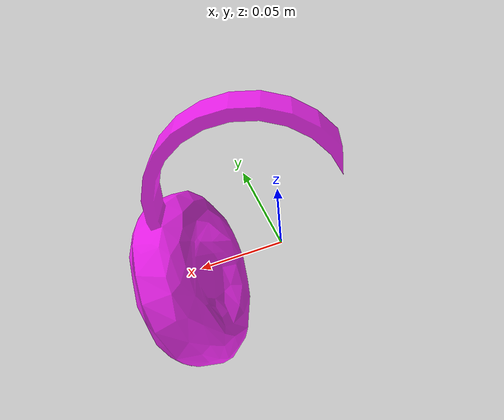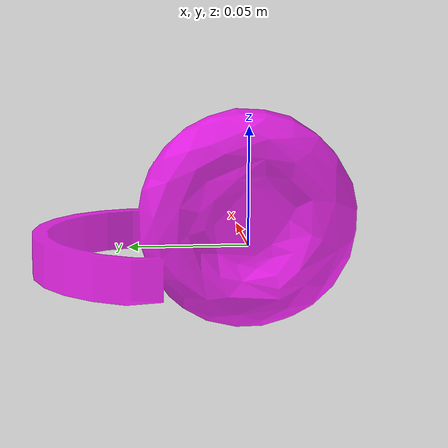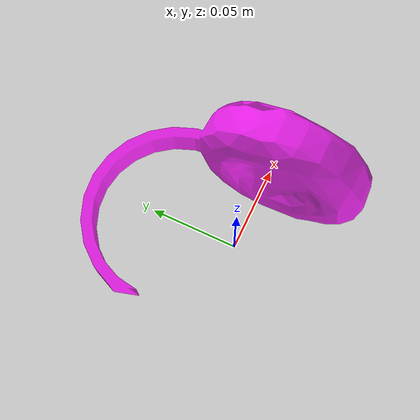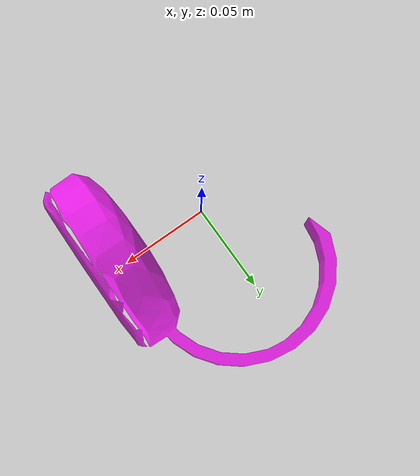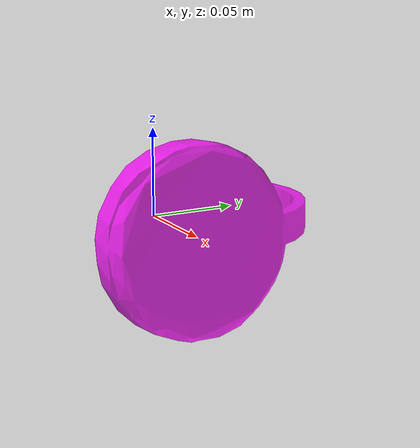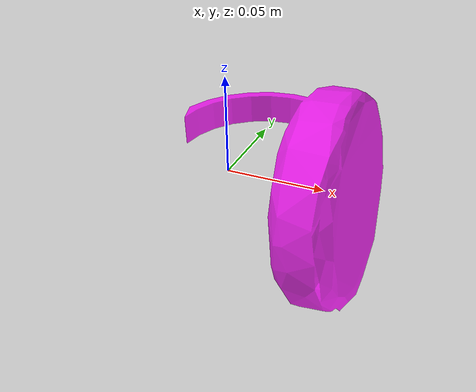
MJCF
<mujoco model="bottom_watertight_tiny">
  <default>
    <default group="2" type="mesh" contype="0" conaffinity="0">
      <geom group="2" type="mesh" contype="0" conaffinity="0"/>
    </default>
    <default group="3" type="mesh">
      <geom group="3" type="mesh"/>
    </default>
  </default>
  <asset>
    <mesh file="bottom_watertight_tiny.obj"/>
    <mesh file="bottom_watertight_tiny_collision_0.obj"/>
    <mesh file="bottom_watertight_tiny_collision_1.obj"/>
    <mesh file="bottom_watertight_tiny_collision_2.obj"/>
    <mesh file="bottom_watertight_tiny_collision_3.obj"/>
    <mesh file="bottom_watertight_tiny_collision_4.obj"/>
    <mesh file="bottom_watertight_tiny_collision_5.obj"/>
    <mesh file="bottom_watertight_tiny_collision_6.obj"/>
    <mesh file="bottom_watertight_tiny_collision_7.obj"/>
    <mesh file="bottom_watertight_tiny_collision_8.obj"/>
    <mesh file="bottom_watertight_tiny_collision_9.obj"/>
    <mesh file="bottom_watertight_tiny_collision_10.obj"/>
    <mesh file="bottom_watertight_tiny_collision_11.obj"/>
    <mesh file="bottom_watertight_tiny_collision_12.obj"/>
    <mesh file="bottom_watertight_tiny_collision_13.obj"/>
    <mesh file="bottom_watertight_tiny_collision_14.obj"/>
    <mesh file="bottom_watertight_tiny_collision_15.obj"/>
    <mesh file="bottom_watertight_tiny_collision_16.obj"/>
    <mesh file="bottom_watertight_tiny_collision_17.obj"/>
    <mesh file="bottom_watertight_tiny_collision_18.obj"/>
    <mesh file="bottom_watertight_tiny_collision_19.obj"/>
    <mesh file="bottom_watertight_tiny_collision_20.obj"/>
    <mesh file="bottom_watertight_tiny_collision_21.obj"/>
    <mesh file="bottom_watertight_tiny_collision_22.obj"/>
    <mesh file="bottom_watertight_tiny_collision_23.obj"/>
    <mesh file="bottom_watertight_tiny_collision_24.obj"/>
    <mesh file="bottom_watertight_tiny_collision_25.obj"/>
    <mesh file="bottom_watertight_tiny_collision_26.obj"/>
    <mesh file="bottom_watertight_tiny_collision_27.obj"/>
    <mesh file="bottom_watertight_tiny_collision_28.obj"/>
    <mesh file="bottom_watertight_tiny_collision_29.obj"/>
    <mesh file="bottom_watertight_tiny_collision_30.obj"/>
    <mesh file="bottom_watertight_tiny_collision_31.obj"/>
    <mesh file="bottom_watertight_tiny_collision_32.obj"/>
    <mesh file="bottom_watertight_tiny_collision_33.obj"/>
    <mesh file="bottom_watertight_tiny_collision_34.obj"/>
    <mesh file="bottom_watertight_tiny_collision_35.obj"/>
    <mesh file="bottom_watertight_tiny_collision_36.obj"/>
    <mesh file="bottom_watertight_tiny_collision_37.obj"/>
    <mesh file="bottom_watertight_tiny_collision_38.obj"/>
    <mesh file="bottom_watertight_tiny_collision_39.obj"/>
    <mesh file="bottom_watertight_tiny_collision_40.obj"/>
    <mesh file="bottom_watertight_tiny_collision_41.obj"/>
    <mesh file="bottom_watertight_tiny_collision_42.obj"/>
    <mesh file="bottom_watertight_tiny_collision_43.obj"/>
    <mesh file="bottom_watertight_tiny_collision_44.obj"/>
    <mesh file="bottom_watertight_tiny_collision_45.obj"/>
    <mesh file="bottom_watertight_tiny_collision_46.obj"/>
    <mesh file="bottom_watertight_tiny_collision_47.obj"/>
    <mesh file="bottom_watertight_tiny_collision_48.obj"/>
    <mesh file="bottom_watertight_tiny_collision_49.obj"/>
    <mesh file="bottom_watertight_tiny_collision_50.obj"/>
    <mesh file="bottom_watertight_tiny_collision_51.obj"/>
    <mesh file="bottom_watertight_tiny_collision_52.obj"/>
    <mesh file="bottom_watertight_tiny_collision_53.obj"/>
    <mesh file="bottom_watertight_tiny_collision_54.obj"/>
    <mesh file="bottom_watertight_tiny_collision_55.obj"/>
    <mesh file="bottom_watertight_tiny_collision_56.obj"/>
    <mesh file="bottom_watertight_tiny_collision_57.obj"/>
    <mesh file="bottom_watertight_tiny_collision_58.obj"/>
    <mesh file="bottom_watertight_tiny_collision_59.obj"/>
    <mesh file="bottom_watertight_tiny_collision_60.obj"/>
    <mesh file="bottom_watertight_tiny_collision_61.obj"/>
    <mesh file="bottom_watertight_tiny_collision_62.obj"/>
    <mesh file="bottom_watertight_tiny_collision_63.obj"/>
    <mesh file="bottom_watertight_tiny_collision_64.obj"/>
    <mesh file="bottom_watertight_tiny_collision_65.obj"/>
    <mesh file="bottom_watertight_tiny_collision_66.obj"/>
    <mesh file="bottom_watertight_tiny_collision_67.obj"/>
    <mesh file="bottom_watertight_tiny_collision_68.obj"/>
    <mesh file="bottom_watertight_tiny_collision_69.obj"/>
    <mesh file="bottom_watertight_tiny_collision_70.obj"/>
    <mesh file="bottom_watertight_tiny_collision_71.obj"/>
    <mesh file="bottom_watertight_tiny_collision_72.obj"/>
    <mesh file="bottom_watertight_tiny_collision_73.obj"/>
    <mesh file="bottom_watertight_tiny_collision_74.obj"/>
    <mesh file="bottom_watertight_tiny_collision_75.obj"/>
    <mesh file="bottom_watertight_tiny_collision_76.obj"/>
  </asset>
  <worldbody>
    <body name="bottom_watertight_tiny">
      <freejoint/>
      <geom mesh="bottom_watertight_tiny" group="2" type="mesh" rgba="1 0 1 0.8" contype="0" conaffinity="0"/>
      <geom mesh="bottom_watertight_tiny_collision_0" rgba="0.5773887846904436 0.6760085532899445 0.9060057922680003 1" group="3" type="mesh"/>
      <geom mesh="bottom_watertight_tiny_collision_1" rgba="0.1813608720664427 0.002170755468185459 0.5770263400091715 1" group="3" type="mesh"/>
      <geom mesh="bottom_watertight_tiny_collision_2" rgba="0.04705966202333933 0.6213939317601054 0.04476967790698916 1" group="3" type="mesh"/>
      <geom mesh="bottom_watertight_tiny_collision_3" rgba="0.7878272902396081 0.31917593614639717 0.627966522639284 1" group="3" type="mesh"/>
      <geom mesh="bottom_watertight_tiny_collision_4" rgba="0.763089264875 0.9826720801770908 0.8962446491003766 1" group="3" type="mesh"/>
      <geom mesh="bottom_watertight_tiny_collision_5" rgba="0.43460533288599623 0.8109144511733324 0.6803107021766451 1" group="3" type="mesh"/>
      <geom mesh="bottom_watertight_tiny_collision_6" rgba="0.19682038455423834 0.2989477600701558 0.4629149816196634 1" group="3" type="mesh"/>
      <geom mesh="bottom_watertight_tiny_collision_7" rgba="0.638830600958989 0.22414911975993213 0.11856174361866378 1" group="3" type="mesh"/>
      <geom mesh="bottom_watertight_tiny_collision_8" rgba="0.712667123565942 0.8840523828115711 0.932718620467708 1" group="3" type="mesh"/>
      <geom mesh="bottom_watertight_tiny_collision_9" rgba="0.5997271547550015 0.0659220817349856 0.8414133467217753 1" group="3" type="mesh"/>
      <geom mesh="bottom_watertight_tiny_collision_10" rgba="0.5669383477277945 0.358913620275512 0.8137929236792601 1" group="3" type="mesh"/>
      <geom mesh="bottom_watertight_tiny_collision_11" rgba="0.17558399080942466 0.4100764862290227 0.9390257791363179 1" group="3" type="mesh"/>
      <geom mesh="bottom_watertight_tiny_collision_12" rgba="0.9063340159803251 0.2962818483514028 0.7906962743749179 1" group="3" type="mesh"/>
      <geom mesh="bottom_watertight_tiny_collision_13" rgba="0.06311286401846816 0.3726369385739967 0.5397562061423258 1" group="3" type="mesh"/>
      <geom mesh="bottom_watertight_tiny_collision_14" rgba="0.7043441768260474 0.44201683449566087 0.11921588232779978 1" group="3" type="mesh"/>
      <geom mesh="bottom_watertight_tiny_collision_15" rgba="0.34725985402841364 0.18811525287794262 0.92936368782076 1" group="3" type="mesh"/>
      <geom mesh="bottom_watertight_tiny_collision_16" rgba="0.5968062141434272 0.7317374351514194 0.4787753015091619 1" group="3" type="mesh"/>
      <geom mesh="bottom_watertight_tiny_collision_17" rgba="0.6076934206951228 0.9064977985003706 0.9006540471827233 1" group="3" type="mesh"/>
      <geom mesh="bottom_watertight_tiny_collision_18" rgba="0.6970166040540459 0.0917056869544165 0.9213950422107883 1" group="3" type="mesh"/>
      <geom mesh="bottom_watertight_tiny_collision_19" rgba="0.6021053066009132 0.2954990367417981 0.6782939364397546 1" group="3" type="mesh"/>
      <geom mesh="bottom_watertight_tiny_collision_20" rgba="0.07899212644168663 0.7409951147986726 0.2306029083879374 1" group="3" type="mesh"/>
      <geom mesh="bottom_watertight_tiny_collision_21" rgba="0.025322744416203524 0.9109725828673251 0.05966481468307139 1" group="3" type="mesh"/>
      <geom mesh="bottom_watertight_tiny_collision_22" rgba="0.2660016149795481 0.38978035506088904 0.24801395901097278 1" group="3" type="mesh"/>
      <geom mesh="bottom_watertight_tiny_collision_23" rgba="0.6784041493116252 0.9551225302054002 0.06077026436605126 1" group="3" type="mesh"/>
      <geom mesh="bottom_watertight_tiny_collision_24" rgba="0.3676722996349592 0.9447661771955067 0.7496784891026801 1" group="3" type="mesh"/>
      <geom mesh="bottom_watertight_tiny_collision_25" rgba="0.9806637380710127 0.616302932775893 0.09673327770457762 1" group="3" type="mesh"/>
      <geom mesh="bottom_watertight_tiny_collision_26" rgba="0.49316886405890414 0.09319067479553389 0.5155684626335567 1" group="3" type="mesh"/>
      <geom mesh="bottom_watertight_tiny_collision_27" rgba="0.8856964119502088 0.24917075843544068 0.15359419928644957 1" group="3" type="mesh"/>
      <geom mesh="bottom_watertight_tiny_collision_28" rgba="0.3520447911169783 0.3064567913128813 0.3145019586979406 1" group="3" type="mesh"/>
      <geom mesh="bottom_watertight_tiny_collision_29" rgba="0.6012514371877782 0.6442720522839565 0.29583706460842196 1" group="3" type="mesh"/>
      <geom mesh="bottom_watertight_tiny_collision_30" rgba="0.9122489444394877 0.8571595090696247 0.8275820239750852 1" group="3" type="mesh"/>
      <geom mesh="bottom_watertight_tiny_collision_31" rgba="0.03383170045775785 0.12413163347703804 0.7283709017184345 1" group="3" type="mesh"/>
      <geom mesh="bottom_watertight_tiny_collision_32" rgba="0.22246054869501508 0.7513463368712555 0.338704328361077 1" group="3" type="mesh"/>
      <geom mesh="bottom_watertight_tiny_collision_33" rgba="0.9705255410710727 0.458811573172238 0.32748748120266746 1" group="3" type="mesh"/>
      <geom mesh="bottom_watertight_tiny_collision_34" rgba="0.08465895156035808 0.3734974542704089 0.817872663520271 1" group="3" type="mesh"/>
      <geom mesh="bottom_watertight_tiny_collision_35" rgba="0.11248515015198346 0.11967399754720975 0.8005097582299101 1" group="3" type="mesh"/>
      <geom mesh="bottom_watertight_tiny_collision_36" rgba="0.438274450581009 0.9310060472013179 0.24831494521012176 1" group="3" type="mesh"/>
      <geom mesh="bottom_watertight_tiny_collision_37" rgba="0.7842714846073101 0.8592826655214935 0.5915788928073862 1" group="3" type="mesh"/>
      <geom mesh="bottom_watertight_tiny_collision_38" rgba="0.5444245898524319 0.47580553061456843 0.6356236756477642 1" group="3" type="mesh"/>
      <geom mesh="bottom_watertight_tiny_collision_39" rgba="0.5204053760052354 0.6651259986090771 0.4209714303355131 1" group="3" type="mesh"/>
      <geom mesh="bottom_watertight_tiny_collision_40" rgba="0.9315695019668968 0.6319003654743887 0.4015377577735947 1" group="3" type="mesh"/>
      <geom mesh="bottom_watertight_tiny_collision_41" rgba="0.2730164256212375 0.5377694157513196 0.5142590884539979 1" group="3" type="mesh"/>
      <geom mesh="bottom_watertight_tiny_collision_42" rgba="0.8947810703851733 0.10719497432743852 0.5417072197245413 1" group="3" type="mesh"/>
      <geom mesh="bottom_watertight_tiny_collision_43" rgba="0.6601186350359386 0.9199066153913272 0.935292017675703 1" group="3" type="mesh"/>
      <geom mesh="bottom_watertight_tiny_collision_44" rgba="0.699169201169045 0.5867065711407442 0.5133073131639957 1" group="3" type="mesh"/>
      <geom mesh="bottom_watertight_tiny_collision_45" rgba="0.26373133826618234 0.3347407431101994 0.7622695087146629 1" group="3" type="mesh"/>
      <geom mesh="bottom_watertight_tiny_collision_46" rgba="0.09055960135330754 0.6296926118499411 0.9358966878888775 1" group="3" type="mesh"/>
      <geom mesh="bottom_watertight_tiny_collision_47" rgba="0.9571320413974563 0.3075640191996507 0.27689943710155207 1" group="3" type="mesh"/>
      <geom mesh="bottom_watertight_tiny_collision_48" rgba="0.11852825659810595 0.05795624599671256 0.16612040073463552 1" group="3" type="mesh"/>
      <geom mesh="bottom_watertight_tiny_collision_49" rgba="0.8989333741564565 0.18801618163254707 0.9780528009348418 1" group="3" type="mesh"/>
      <geom mesh="bottom_watertight_tiny_collision_50" rgba="0.1952085354703238 0.5524375128629717 0.8267410147719947 1" group="3" type="mesh"/>
      <geom mesh="bottom_watertight_tiny_collision_51" rgba="0.2707655972847056 0.7445390133059469 0.8366153579848243 1" group="3" type="mesh"/>
      <geom mesh="bottom_watertight_tiny_collision_52" rgba="0.8381556445923131 0.23000773247454176 0.008407973383814715 1" group="3" type="mesh"/>
      <geom mesh="bottom_watertight_tiny_collision_53" rgba="0.16073289705259386 0.7183822163267158 0.9217133447626416 1" group="3" type="mesh"/>
      <geom mesh="bottom_watertight_tiny_collision_54" rgba="0.908957095791225 0.029579238124715412 0.19887676338396787 1" group="3" type="mesh"/>
      <geom mesh="bottom_watertight_tiny_collision_55" rgba="0.3214579320596471 0.12177564889736037 0.7834193714584171 1" group="3" type="mesh"/>
      <geom mesh="bottom_watertight_tiny_collision_56" rgba="0.6632858315424626 0.6844002171672429 0.024537872827508744 1" group="3" type="mesh"/>
      <geom mesh="bottom_watertight_tiny_collision_57" rgba="0.7358671849026052 0.29043755491343026 0.3668966715186007 1" group="3" type="mesh"/>
      <geom mesh="bottom_watertight_tiny_collision_58" rgba="0.2596554399040266 0.5610987840021593 0.9172950040475459 1" group="3" type="mesh"/>
      <geom mesh="bottom_watertight_tiny_collision_59" rgba="0.38863308214317316 0.32314601502004325 0.29864534471168913 1" group="3" type="mesh"/>
      <geom mesh="bottom_watertight_tiny_collision_60" rgba="0.0249242295266906 0.6651478883647537 0.31079109710970876 1" group="3" type="mesh"/>
      <geom mesh="bottom_watertight_tiny_collision_61" rgba="0.18982131933097046 0.9034363228246379 0.2436119729324413 1" group="3" type="mesh"/>
      <geom mesh="bottom_watertight_tiny_collision_62" rgba="0.761604942166949 0.7948281920481433 0.9995685033358174 1" group="3" type="mesh"/>
      <geom mesh="bottom_watertight_tiny_collision_63" rgba="0.5459977644770759 0.6464311703947124 0.36145091052896017 1" group="3" type="mesh"/>
      <geom mesh="bottom_watertight_tiny_collision_64" rgba="0.9875252766268413 0.10934978421047259 0.7785527572973425 1" group="3" type="mesh"/>
      <geom mesh="bottom_watertight_tiny_collision_65" rgba="0.656679777624796 0.7263338783289351 0.8079043039430325 1" group="3" type="mesh"/>
      <geom mesh="bottom_watertight_tiny_collision_66" rgba="0.7753956479524327 0.6430010441753587 0.5416339311928137 1" group="3" type="mesh"/>
      <geom mesh="bottom_watertight_tiny_collision_67" rgba="0.06307638369525603 0.8143481679275868 0.8455226195333914 1" group="3" type="mesh"/>
      <geom mesh="bottom_watertight_tiny_collision_68" rgba="0.10502011459759986 0.17869121395135257 0.012145778328506829 1" group="3" type="mesh"/>
      <geom mesh="bottom_watertight_tiny_collision_69" rgba="0.5845623658736073 0.6009749234941326 0.35094279919331395 1" group="3" type="mesh"/>
      <geom mesh="bottom_watertight_tiny_collision_70" rgba="0.9290150430147743 0.7082294796129461 0.16614698870201883 1" group="3" type="mesh"/>
      <geom mesh="bottom_watertight_tiny_collision_71" rgba="0.7712515044867573 0.6376489373313354 0.6731687659223847 1" group="3" type="mesh"/>
      <geom mesh="bottom_watertight_tiny_collision_72" rgba="0.8584391063290662 0.8562537594214581 0.8377444970375438 1" group="3" type="mesh"/>
      <geom mesh="bottom_watertight_tiny_collision_73" rgba="0.7684697330004095 0.6118098740695636 0.39774295511966606 1" group="3" type="mesh"/>
      <geom mesh="bottom_watertight_tiny_collision_74" rgba="0.0973268816459415 0.13808076152774473 0.18338434016025584 1" group="3" type="mesh"/>
      <geom mesh="bottom_watertight_tiny_collision_75" rgba="0.3912732638790921 0.44231698690659293 0.20789991853164325 1" group="3" type="mesh"/>
      <geom mesh="bottom_watertight_tiny_collision_76" rgba="0.6055362075145302 0.05442212591392748 0.683914657041436 1" group="3" type="mesh"/>
    </body>
  </worldbody>
</mujoco>
